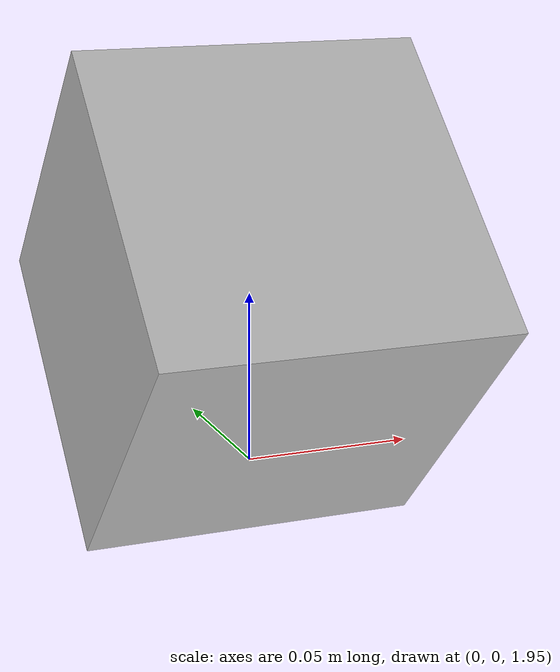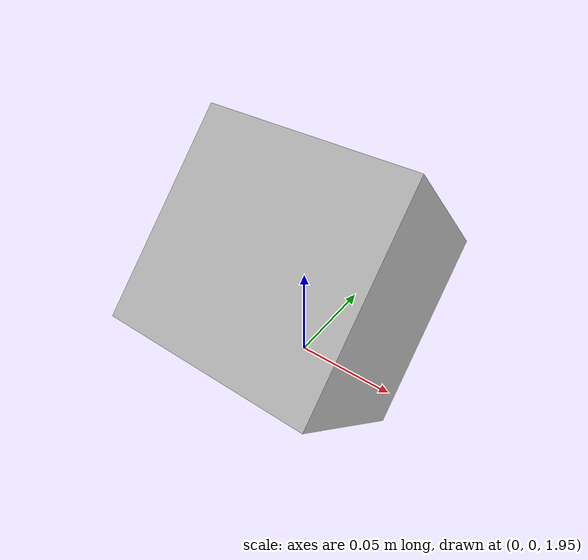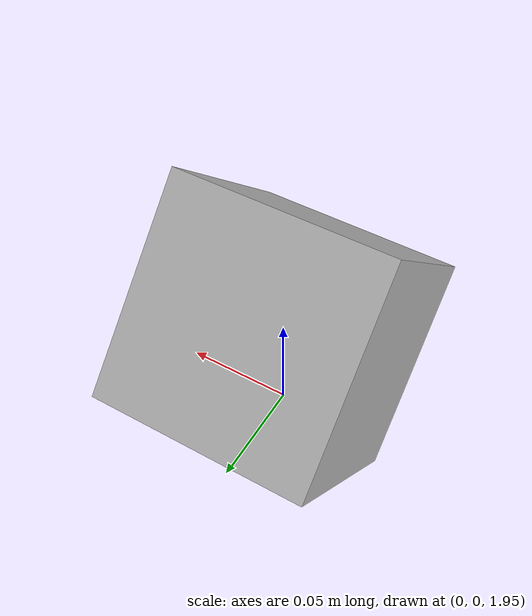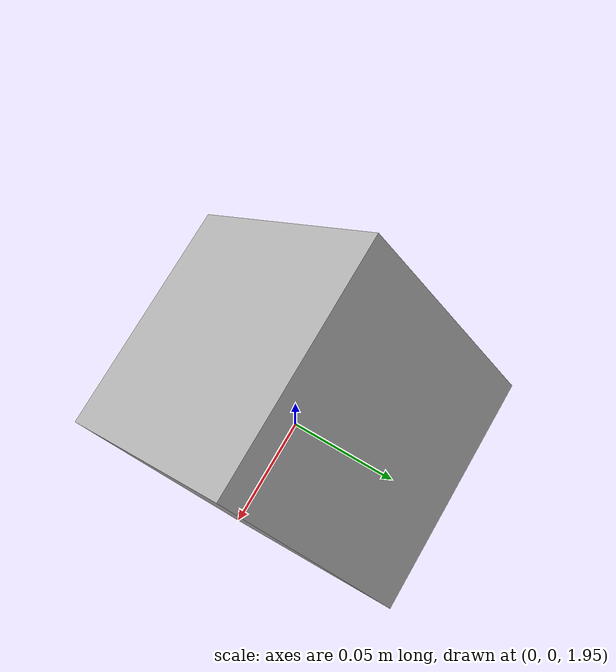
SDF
<?xml version="1.0" ?>
<sdf version="1.5">
  <model name="custom_camera">

    <static>true</static>
    <pose>0 0 2 0 0.808404 1.57079632679</pose>

    <link name="link">

      <collision name="collision">
        <geometry>
          <box>
            <size>0.1 0.1 0.1</size>
          </box>
        </geometry>
      </collision>

      <visual name="visual">
        <geometry>
          <box>
            <size>0.1 0.1 0.1</size>
          </box>
        </geometry>
        <material>
          <script>Gazebo/Orange</script>
        </material>
      </visual>

      <sensor type="camera" name="camera1">
        <update_rate>30.0</update_rate>
        <camera name="head">
          <horizontal_fov>1.3962634</horizontal_fov>
          <image>
            <width>800</width>
            <height>800</height>
            <format>R8G8B8</format>
          </image>
          <clip>
            <near>0.02</near>
            <far>300</far>
          </clip>
          <noise>
            <type>gaussian</type>
            <!-- Noise is sampled independently per pixel on each frame.
                 That pixel's noise value is added to each of its color
                 channels, which at that point lie in the range [0,1]. -->
            <mean>0.0</mean>
            <stddev>0.007</stddev>
          </noise>
        </camera>
        <plugin name="camera_controller" filename="libgazebo_ros_camera.so">
          <alwaysOn>true</alwaysOn>
          <updateRate>0.0</updateRate>
          <cameraName>rrbot/camera1</cameraName>
          <imageTopicName>image_raw</imageTopicName>
          <cameraInfoTopicName>camera_info</cameraInfoTopicName>
          <frameName>camera_link</frameName>
          <hackBaseline>0.07</hackBaseline>
          <distortionK1>0.0</distortionK1>
          <distortionK2>0.0</distortionK2>
          <distortionK3>0.0</distortionK3>
          <distortionT1>0.0</distortionT1>
          <distortionT2>0.0</distortionT2>
        </plugin>
      </sensor>

    </link>
  </model>
</sdf>
